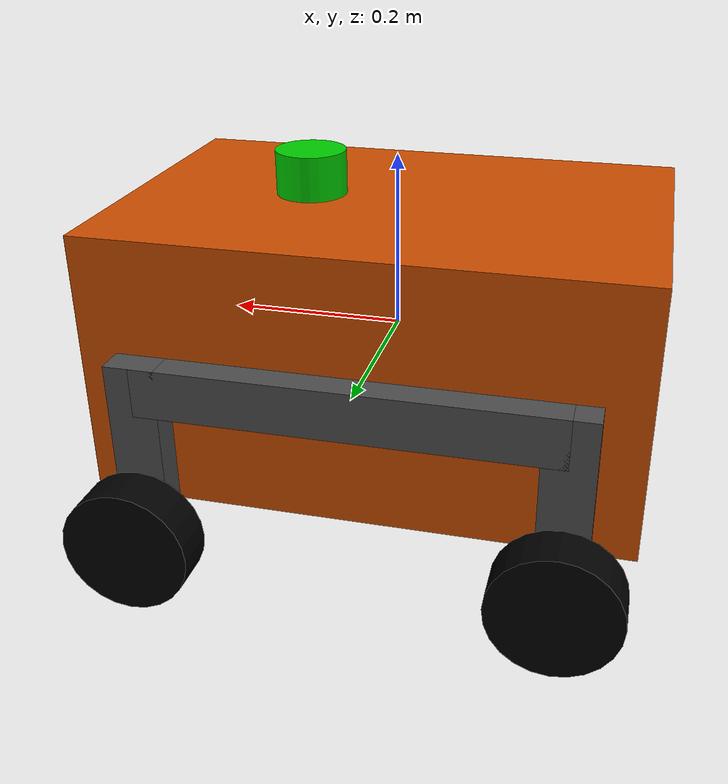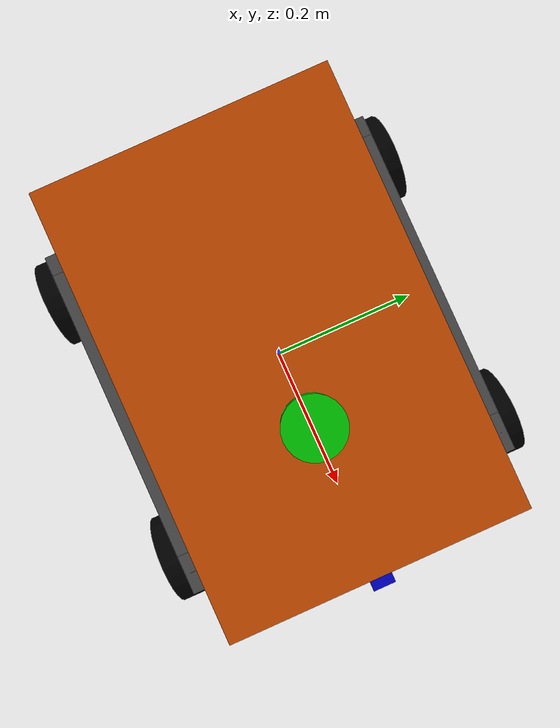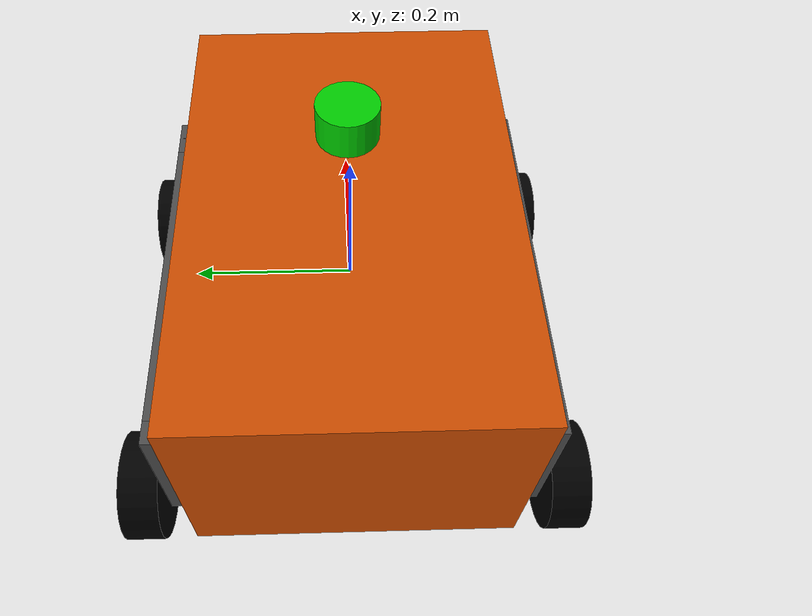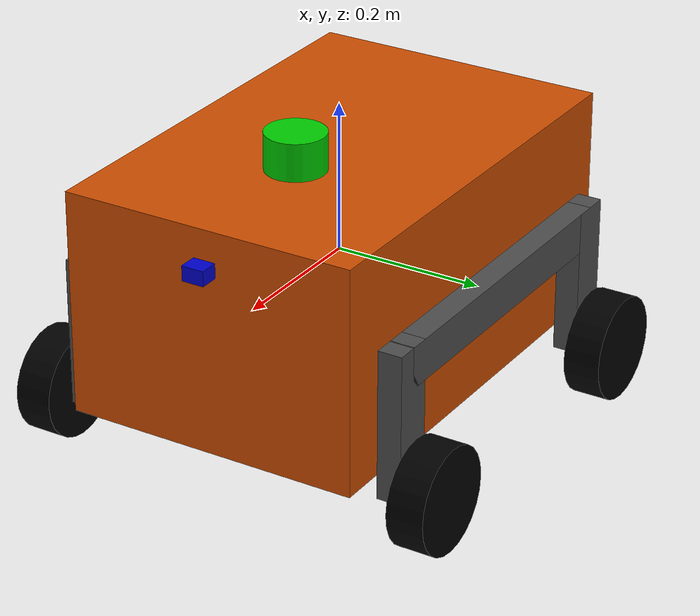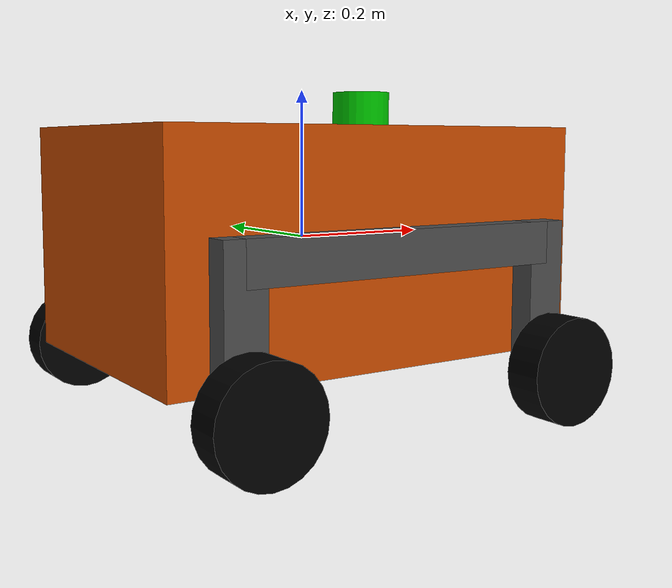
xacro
<?xml version="1.0" encoding="UTF-8"?>
<robot name="four_wheeler" xmlns:xacro="http://ros.org/wiki/xacro">
  <xacro:macro name="colored_material" params="name r g b a">
    <material name="${name}">
      <color rgba="${r} ${g} ${b} ${a}"/>
    </material>
  </xacro:macro>

  <link name="world_link"/>
  <link name="base_link">
    <visual>
      <geometry>
        <box size="0.6 0.4 0.3"/>
      </geometry>
      <origin xyz="0 0 0" rpy="0 0 0"/>
      <xacro:colored_material name="red" r="0.8" g="0.3" b="0" a="1"/>
    </visual>
    <inertial>
      <origin xyz="0 0 0" rpy="0 0 0"/>
      <mass value="10"/>
      <inertia
        ixx="0.4167" ixy="0.0" ixz="0.0"
        iyy="0.6500" iyz="0.0"
        izz="0.8333"/>
    </inertial>
    <collision>
      <origin xyz="0 0 0" rpy="0 0 0"/>
      <geometry>
        <box size="0.6 0.4 0.3"/>
      </geometry>
    </collision>
  </link>

  <gazebo reference ='base_link'>
      <material>Gazebo/Orange</material>

  </gazebo>

<xacro:macro name="base_rocker_link" params="prefix">
    <link name="${prefix}_connection_link">
        <visual>
            <geometry>
                <cylinder radius="0.01" length="0.01"/>
            </geometry>
            <origin xyz="0 0 0" rpy="0 0 0"/>
            <xacro:colored_material name="red" r="0" g="0" b="0" a="1"/>
        </visual>
        <inertial>
            <origin xyz="0 0 0" rpy="0 0 0"/>
            <mass value="0.2"/>
            <inertia
                ixx="6.6667e-06" ixy="0.0" ixz="0.0"
                iyy="6.6667e-06" iyz="0.0"
                izz="1.0e-05"/>
        </inertial>
        <collision>
            <origin xyz="0 0 0" rpy="0 0 0"/>
            <geometry>
                <cylinder radius="0.01" length="0.01"/>
            </geometry>
        </collision>
    </link>
</xacro:macro>
<xacro:base_rocker_link prefix="l"/>
<xacro:base_rocker_link prefix="r"/>

<xacro:macro name="rocker_link" params="prefix">
   <link name="${prefix}_rocker_link">
    <visual>
      <geometry>
        <box size="0.45 0.0325 0.055"/>
      </geometry>
      <origin xyz="0 0 0" rpy="0 0 0"/>
      <xacro:colored_material name="gray" r="0.3" g="0.3" b="0.3" a="1"/>
    </visual>
    <inertial>
      <origin xyz="0 0 0" rpy="0 0 0"/>
      <mass value="2"/>
      <inertia
        ixx="0.002604" ixy="0.0" ixz="0.0"
        iyy="0.034688" iyz="0.0"
        izz="0.035417"/>
    </inertial>
    <collision>
      <origin xyz="0 0 0" rpy="0 0 0"/>
      <geometry>
        <box size="0.45 0.1 0.075"/>
      </geometry>
    </collision>
  </link>
</xacro:macro>
<xacro:rocker_link prefix="l"/>
<xacro:rocker_link prefix="r"/>

<gazebo reference='l_rocker_link'>
  <material>Gazebo/Gray</material>
</gazebo>

<gazebo reference='l_rocker_link'>
  <material>Gazebo/Gray</material>
</gazebo>

<xacro:macro name="rocker_extension" params="prefix1 prefix2">
  <link name="${prefix1}_rocker_${prefix2}_extension_link">
  <visual>
    <geometry>
      <box size="0.2 0.0325 0.055"/>
    </geometry>
    <origin xyz="0 0 0" rpy="0 0 0"/>
    <xacro:colored_material name="gray" r="0.3" g="0.3" b="0.3" a="1"/>
  </visual>
  <inertial>
    <origin xyz="0 0 0" rpy="0 0 0"/>
    <mass value="1"/>
    <inertia
      ixx="0.000263" ixy="0.0" ixz="0.0"
      iyy="0.003591" iyz="0.0"
      izz="0.00342"/>
  </inertial>
  <collision>
    <origin xyz="0 0 0" rpy="0 0 0"/>
    <geometry>
      <box size="0.2 0.0325 0.055"/>
    </geometry>
  </collision>
</link>
</xacro:macro>
<xacro:rocker_extension prefix1="l" prefix2="back"/>
<xacro:rocker_extension prefix1="l" prefix2="front"/>
<xacro:rocker_extension prefix1="r" prefix2="back"/>
<xacro:rocker_extension prefix1="r" prefix2="front"/>

<gazebo reference='l_rocker_front_extension_link'>
  <material>Gazebo/Gray</material>
</gazebo>

<gazebo reference='r_rocker_front_extension_link'>
  <material>Gazebo/Gray</material>
</gazebo>

<gazebo reference='l_rocker_back_extension_link'>
  <material>Gazebo/Gray</material>
</gazebo>

<gazebo reference='r_rocker_back_extension_link'>
  <material>Gazebo/Gray</material>
</gazebo>

<xacro:macro name="wheel_connection_link" params="prefix1 prefix2">
     <link name="${prefix1}_${prefix2}_wheel_connection_link">
    <visual>
      <geometry>
        <cylinder radius="0.01" length="0.01"/>
      </geometry>
      <origin xyz="0 0 0" rpy="0 0 0"/>
      <xacro:colored_material name="green" r="0" g="1" b="0" a="1"/>
    </visual>
    <inertial>
  <origin xyz="0 0 0" rpy="0 0 0"/>
  <mass value="0.2"/>
  <inertia
    ixx="6.6667e-06" ixy="0.0" ixz="0.0"
    iyy="6.6667e-06" iyz="0.0"
    izz="1.0e-05"/>
</inertial>
    <collision>
      <origin xyz="0 0 0" rpy="0 0 0"/>
      <geometry>
        <cylinder radius="0.01" length="0.01"/>
      </geometry>
    </collision>
  </link>
</xacro:macro>
<xacro:wheel_connection_link prefix1="r" prefix2="front"/>
<xacro:wheel_connection_link prefix1="r" prefix2="back"/>
<xacro:wheel_connection_link prefix1="l" prefix2="front"/>
<xacro:wheel_connection_link prefix1="l" prefix2="back"/>

<xacro:macro name="wheel_link" params="prefix1 prefix2">
  <link name="${prefix1}_${prefix2}_wheel_link">
  <visual>
    <geometry>
      <cylinder radius="0.07" length="0.05"/>
    </geometry>
    <origin xyz="0 0 0" rpy="0 0 0"/>
    <xacro:colored_material name="black" r="0" b="0" g="0" a="1"/>
  </visual>

  <collision>
    <origin xyz="0 0 0" rpy="0 0 0"/>
    <geometry>
      <cylinder radius="0.07" length="0.05"/>
    </geometry>
  </collision>

  <inertial>
    <origin xyz="0 0 0" rpy="0 0 0"/>
    <mass value="0.5"/>
    <inertia
      ixx="0.001" ixy="0" ixz="0"
      iyy="0.001" iyz="0"
      izz="0.002" />
  </inertial>
</link>
</xacro:macro>

<xacro:wheel_link prefix1="r" prefix2="front"/>
<xacro:wheel_link prefix1="l" prefix2="front"/>
<xacro:wheel_link prefix1="l" prefix2="back"/>
<xacro:wheel_link prefix1="r" prefix2="back"/>

<gazebo reference='l_front_wheel_link'>
  <material>Gazebo/Black</material>
</gazebo>

<gazebo reference='r_front_wheel_link'>
  <material>Gazebo/Black</material>
</gazebo>

<gazebo reference='l_back_wheel_link'>
  <material>Gazebo/Black</material>
</gazebo>

<gazebo reference='r_back_wheel_link'>
  <material>Gazebo/Black</material>
</gazebo>

<joint name="world_to_base" type="fixed">
  <parent link="world_link"/>
  <child link="base_link"/>
</joint>

<xacro:macro name="base_connection_joint" params="prefix x y z r p yaw">
   <joint name="base_${prefix}_connection_joint" type="fixed">
  <parent link="base_link"/>
  <child link="${prefix}_connection_link"/>
  <origin xyz="${x} ${y} ${z}" rpy="${r} ${p} ${yaw}"/>
</joint>
</xacro:macro>

<xacro:base_connection_joint prefix="l" x="0" y="0.205" z="0" r="1.57075" p="0" yaw="0"/>
<xacro:base_connection_joint prefix="r" x="0" y="-0.205" z="0" r="1.57075" p="0" yaw="0"/>

<xacro:macro name="connection_rocker_joint" params="prefix x y z r p yaw">
   <joint name="${prefix}_connection_${prefix}_rocker_joint" type="fixed">
  <parent link="${prefix}_connection_link"/>
  <child link="${prefix}_rocker_link"/>
  <axis xyz="0 1 0"/>
  <origin xyz="${x} ${y} ${z}" rpy="${r} ${p} ${yaw}"/>
</joint>
</xacro:macro>
<xacro:connection_rocker_joint prefix="l" x="0" y="0" z="-0.02" r="1.57075" p="0" yaw="0"/>
<xacro:connection_rocker_joint prefix="r" x="0" y="0" z="0.02" r="1.57075" p="0" yaw="0"/>

<gazebo reference="l_connection_l_rocker_joint">
    <physics>
        <damping>0.1</damping>
        <friction>0.5</friction>
    </physics>
</gazebo>

<gazebo reference="r_connection_r_rocker_joint">
    <physics>
        <damping>0.1</damping>
        <friction>0.5</friction>
    </physics>
</gazebo>

<xacro:macro name="rocker_rocker_extension_joint" params="prefix1 prefix2 x y z r p yaw">
  <joint name="${prefix1}_rocker_${prefix1}_rocker_${prefix2}__extension_joint" type="fixed">
    <parent link="${prefix1}_rocker_link"/>
    <child link="${prefix1}_rocker_${prefix2}_extension_link"/>
    <axis xyz="0 1 0"/>
    <origin xyz="${x} ${y} ${z}" rpy="${r} ${p} ${yaw}"/>
  </joint>
</xacro:macro>

<xacro:rocker_rocker_extension_joint prefix1="l" prefix2="back" x="-0.225" y="0" z="0.0725" r="0" p="1.57075" yaw="0"/>
<xacro:rocker_rocker_extension_joint prefix1="l" prefix2="front" x="0.225" y="0" z="0.0725" r="0" p="1.57075" yaw="0"/>
<xacro:rocker_rocker_extension_joint prefix1="r" prefix2="front" x="0.225" y="0" z="0.0725" r="0" p="1.57075" yaw="0"/>
<xacro:rocker_rocker_extension_joint prefix1="r" prefix2="back" x="-0.225" y="0" z="0.0725" r="0" p="1.57075" yaw="0"/>

<xacro:macro name="rocker_extension_wheel_connection_joint" params="prefix1 prefix2 x y z r p yaw">
<joint name="${prefix1}_${prefix2}_extension_${prefix1}_${prefix2}_wheel_connection_joint" type="fixed">
  <parent link="${prefix1}_rocker_${prefix2}_extension_link"/>
  <child link="${prefix1}_${prefix2}_wheel_connection_link"/>
  <origin xyz="${x} ${y} ${z}" rpy="${r} ${p} ${yaw}"/>
</joint>
</xacro:macro>

<xacro:rocker_extension_wheel_connection_joint prefix1="r" prefix2="front" x="-0.09" y="0.02125" z="0" r="1.57075" p="0" yaw="0"/>
<xacro:rocker_extension_wheel_connection_joint prefix1="r" prefix2="back" x="-0.09" y="0.02125" z="0" r="1.57075" p="0" yaw="0"/>
<xacro:rocker_extension_wheel_connection_joint prefix1="l" prefix2="front" x="-0.09" y="-0.02125" z="0" r="1.57075" p="0" yaw="0"/>
<xacro:rocker_extension_wheel_connection_joint prefix1="l" prefix2="back" x="-0.09" y="-0.02125" z="0" r="1.57075" p="0" yaw="0"/>

<xacro:macro name="wheel_connection_wheel_joint" params="prefix1 prefix2 x y z r p yaw">
  <joint name="${prefix1}_${prefix2}_wheel_connection_${prefix1}_${prefix2}_wheel_joint" type="continuous">
  <parent link="${prefix1}_${prefix2}_wheel_connection_link"/>
  <child link="${prefix1}_${prefix2}_wheel_link"/>
  <origin xyz="${x} ${y} ${z}" rpy="${r} ${p} ${yaw}"/>
  <axis xyz="0 0 1"/>
</joint>
</xacro:macro>
<xacro:wheel_connection_wheel_joint prefix1="r" prefix2="front" x="0" y="0" z="-0.025" r="0" p="0" yaw="0"/>
<xacro:wheel_connection_wheel_joint prefix1="l" prefix2="front" x="0" y="0" z="0.025" r="0" p="0" yaw="0"/>
<xacro:wheel_connection_wheel_joint prefix1="l" prefix2="back" x="0" y="0" z="0.025" r="0" p="0" yaw="0"/>
<xacro:wheel_connection_wheel_joint prefix1="r" prefix2="back" x="0" y="0" z="-0.025" r="0" p="0" yaw="0"/>

<!-- Camera Link and Joint -->
<link name="camera_link">
  <visual>
    <geometry>
      <box size="0.05 0.03 0.02"/>
    </geometry>
    <origin xyz="0 0 0" rpy="0 0 0"/>
    <xacro:colored_material name="blue" r="0" g="0" b="0.8" a="1"/>
  </visual>
  <inertial>
    <origin xyz="0 0 0" rpy="0 0 0"/>
    <mass value="0"/>
    <inertia
      ixx="0" ixy="0.0" ixz="0.0"
      iyy="0" iyz="0.0"
      izz="0"/>
  </inertial>
  <collision>
    <origin xyz="0 0 0" rpy="0 0 0"/>
    <geometry>
      <box size="0.05 0.03 0.02"/>
    </geometry>
  </collision>
</link>

<joint name="camera_joint" type="fixed">
  <parent link="base_link"/>
  <child link="camera_link"/>
  <origin xyz="0.3 0 0.1" rpy="0 0 0"/>
</joint>

<!-- Lidar Link and Joint -->
<link name="lidar_link">
  <visual>
    <geometry>
      <cylinder radius="0.04" length="0.06"/>
    </geometry>
    <origin xyz="0 0 0" rpy="0 0 0"/>
    <xacro:colored_material name="green" r="0" g="0.8" b="0" a="1"/>
  </visual>
  <inertial>
    <origin xyz="0 0 0" rpy="0 0 0"/>
    <mass value="0"/>
    <inertia
      ixx="0" ixy="0.0" ixz="0.0"
      iyy="0" iyz="0.0"
      izz="0"/>
  </inertial>
  <collision>
    <origin xyz="0 0 0" rpy="0 0 0"/>
    <geometry>
      <cylinder radius="0.04" length="0.06"/>
    </geometry>
  </collision>
</link>

<joint name="lidar_joint" type="fixed">sss
  <parent link="base_link"/>
  <child link="lidar_link"/>
  <origin xyz="0.1 0 0.17" rpy="0 0 0"/>
</joint>

<xacro:include filename='lidar_plugin.urdf.xacro'/>
<xacro:include filename='camer_plugin.urdf.xacro'/>
<xacro:include filename='gazebo_control_plugin.urdf.xacro'/>
<xacro:include filename = 'depth_camera_plugin.urdf.xacro'/>
</robot>
